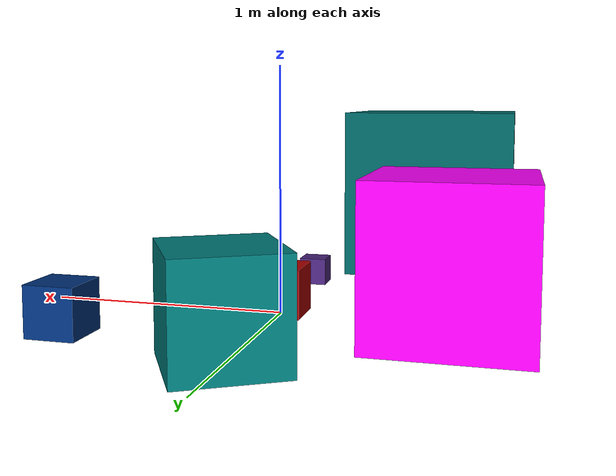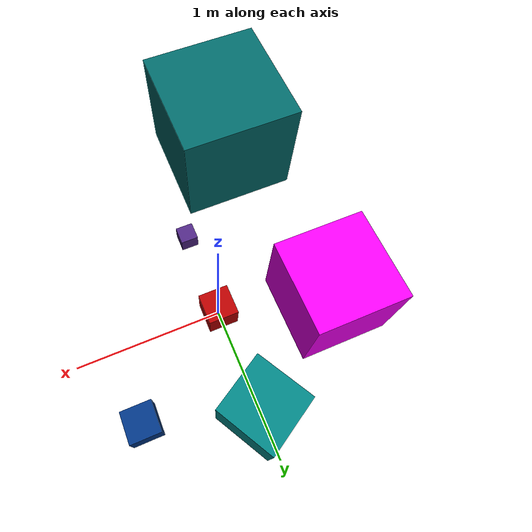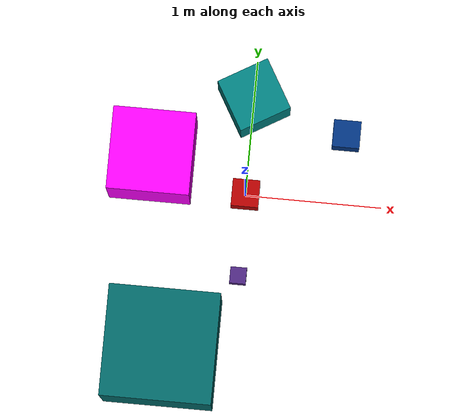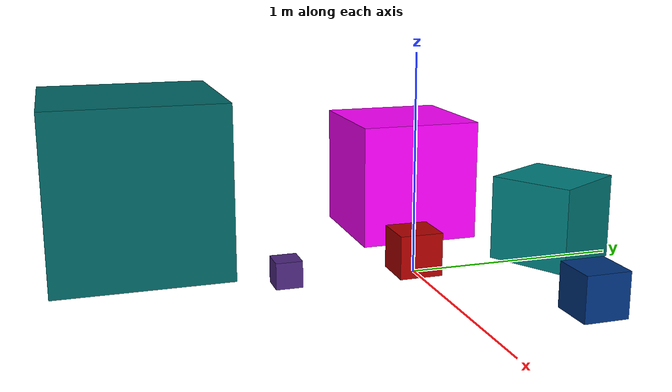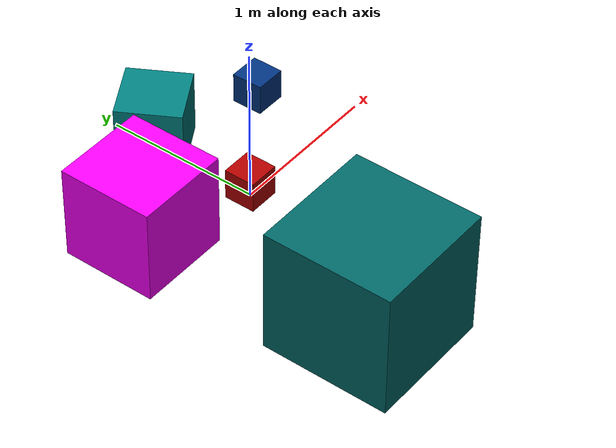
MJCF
<mujoco>
    <worldbody>
        <body name="red_cube" pos="0 0 0.1" euler="0 0 0">
            <joint type = "free"/>
            <geom type="box" size=".1 .1 .1" rgba="0.7 0 0 1"/>
        </body>

        <body name="blue_small_cube" pos="0.7 0.5 0.1" euler="0 0 0">
            <joint type = "free"/>
            <geom type="box" size=".1 .1 .1" rgba="0 0.2 0.5 1"/>
        </body>

        <body name="blue_medium_cube" pos="0 .7 .2" euler="0 0 30">
            <joint type = "free"/>
            <geom type="box" size=".2 .2 .2" rgba="0 .5 .5 1"/>
        </body>

        <body name="pink_cube" pos="-0.7 0.2 .3" euler="0 0 90">
            <joint type = "free"/>
            <geom type="box" size=".3 .3 .3" rgba="1 0 1 1"/>
        </body>

        <body name="purple_cube" pos="0 -.6 .06" euler="0 0 0">
            <joint type = "free"/>
            <geom type="box" size=".06 .06 .06" rgba=".3 .15 .5 1"/>
        </body>

        <body name="big_cube" pos="-0.5 -1.2 .4" euler="0 0 0">
            <joint type = "free"/>
            <geom type="box" size=".4 .4 .4" rgba="0 .4 .4 1"/>
        </body>

    </worldbody>
</mujoco>
